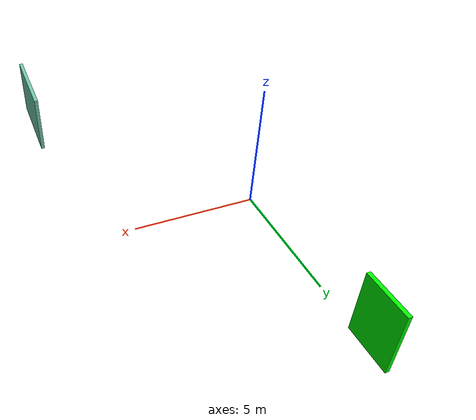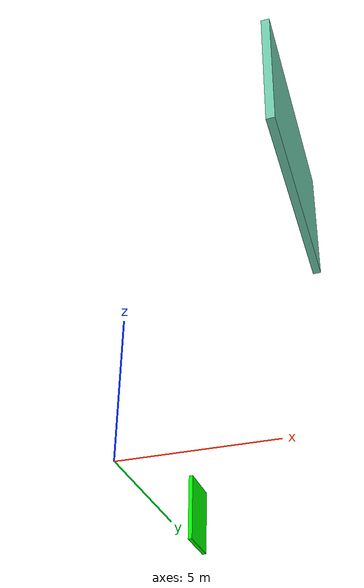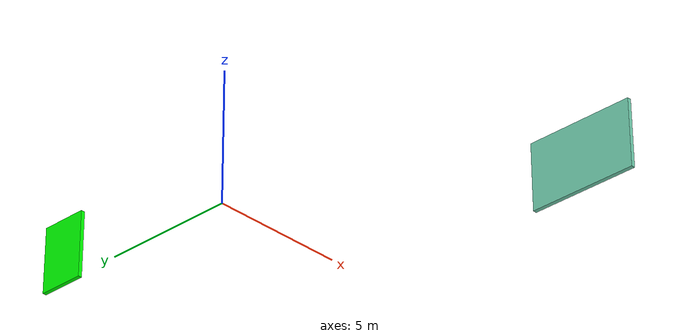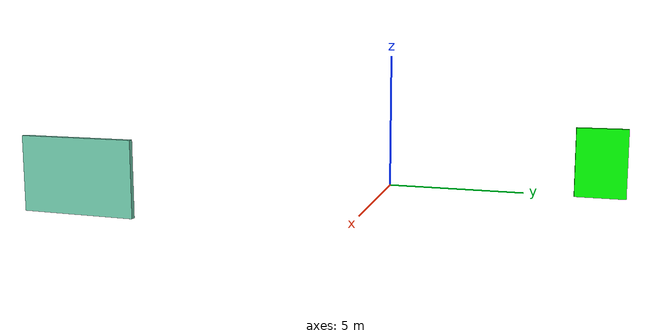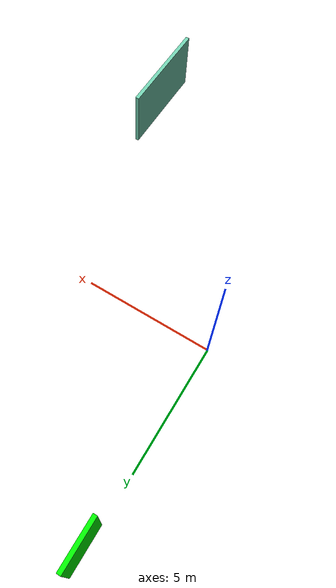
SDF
<?xml version='1.0'?>
<sdf version='1.6'>
  <model name='kevin_update5'>
    <pose frame=''>3.65092 -1.14057 0 0 -0 0</pose>
    <link name='Wall_3'>
      <collision name='Wall_3_Collision'>
        <geometry>
          <box>
            <size>4 0.15 2.5</size>
          </box>
        </geometry>
        <pose frame=''>0 0 1.25 0 -0 0</pose>
      </collision>
      <visual name='Wall_3_Visual'>
        <pose frame=''>0 0 1.25 0 -0 0</pose>
        <geometry>
          <box>
            <size>4 0.15 2.5</size>
          </box>
        </geometry>
        <material>
          <script>
            <uri>file://media/materials/scripts/gazebo.material</uri>
            <name>Gazebo/Grey</name>
          </script>
          <ambient>0.435294 0.796078 0.67451 1</ambient>
        </material>
        <meta>
          <layer>0</layer>
        </meta>
      </visual>
      <pose frame=''>3.57328 -7.64557 0 0 0 -1.5708</pose>
    </link>
    <link name='Wall_9'>
      <collision name='Wall_9_Collision'>
        <geometry>
          <box>
            <size>1.75 0.15 2.5</size>
          </box>
        </geometry>
        <pose frame=''>0 0 1.25 0 -0 0</pose>
      </collision>
      <visual name='Wall_9_Visual'>
        <pose frame=''>0 0 1.25 0 -0 0</pose>
        <geometry>
          <box>
            <size>1.75 0.15 2.5</size>
          </box>
        </geometry>
        <material>
          <script>
            <uri>file://media/materials/scripts/gazebo.material</uri>
            <name>Gazebo/Grey</name>
          </script>
          <ambient>0 1 0 1</ambient>
        </material>
        <meta>
          <layer>0</layer>
        </meta>
      </visual>
      <pose frame=''>-3.57328 8.77057 0 0 0 -1.5708</pose>
    </link>
    <static>1</static>
  </model>
</sdf>
